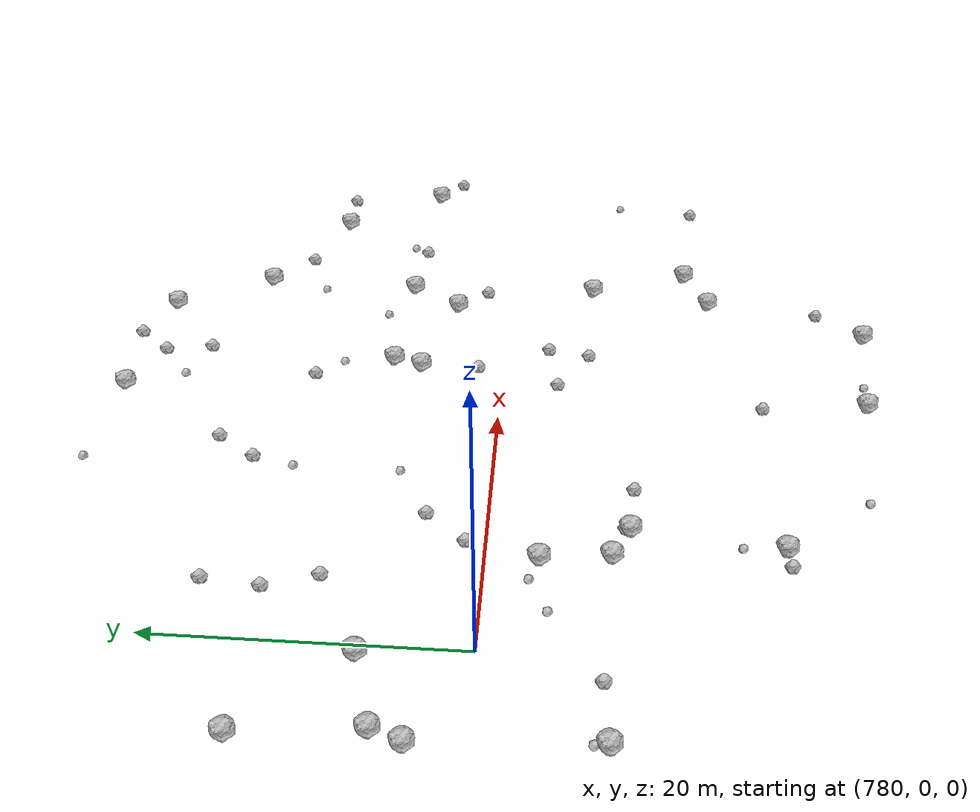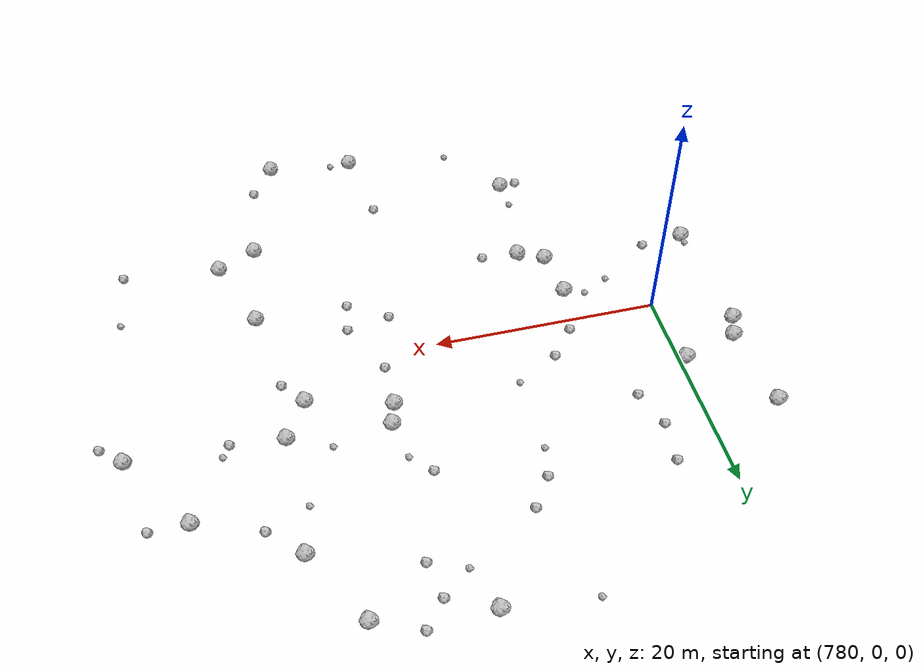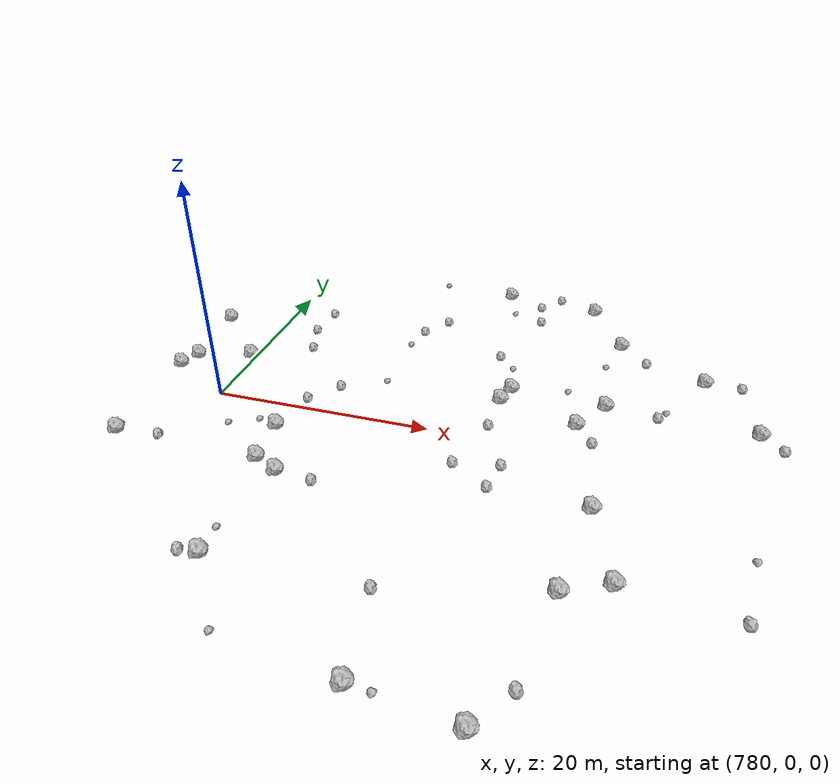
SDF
<sdf version="1.6">
 <world name="default">
  <include><uri>model://sun</uri></include>
  <model name="rock1_20_4">
   <include><uri>model://rock1</uri><pose>811.3789797285538 25.53555437764058 0.5 0 0 0</pose></include>
  </model>
  <model name="rock1_20_5">
   <include><uri>model://rock1</uri><pose>773.7374233360775 3.4619136225920926 0.5 0 0 0</pose></include>
  </model>
  <model name="rock1_20_6">
   <include><uri>model://rock1</uri><pose>817.3586921586631 -13.570278626457682 0.5 0 0 0</pose></include>
  </model>
  <model name="rock1_20_7">
   <include><uri>model://rock1</uri><pose>805.1569839065572 5.942245434161123 0.5 0 0 0</pose></include>
  </model>
  <model name="rock1_20_8">
   <include><uri>model://rock1</uri><pose>827.655069247413 6.720908277483446 0.5 0 0 0</pose></include>
  </model>
  <model name="rock1_20_9">
   <include><uri>model://rock1</uri><pose>805.7549116550215 7.984831683208711 0.5 0 0 0</pose></include>
  </model>
  <model name="rock1_20_10">
   <include><uri>model://rock1</uri><pose>812.3754027974496 3.887229916017425 0.5 0 0 0</pose></include>
  </model>
  <model name="rock1_20_11">
   <include><uri>model://rock1</uri><pose>813.8643900924701 -15.249603832975067 0.5 0 0 0</pose></include>
  </model>
  <model name="rock1_20_12">
   <include><uri>model://rock1</uri><pose>810.5370631689937 -26.580604804713886 0.5 0 0 0</pose></include>
  </model>
  <model name="rock1_20_13">
   <include><uri>model://rock1</uri><pose>787.755196873521 -7.854509484363973 0.5 0 0 0</pose></include>
  </model>
  <model name="rock1_20_14">
   <include><uri>model://rock1</uri><pose>802.7720359446454 -25.741325508989384 0.5 0 0 0</pose></include>
  </model>
  <model name="rock1_20_15">
   <include><uri>model://rock1</uri><pose>774.4881421251896 5.432009892951541 0.5 0 0 0</pose></include>
  </model>
  <model name="rock1_20_16">
   <include><uri>model://rock1</uri><pose>774.3232913651559 -7.689798417439317 0.5 0 0 0</pose></include>
  </model>
  <model name="rock1_20_17">
   <include><uri>model://rock1</uri><pose>787.2919973551503 -3.348871417814859 0.5 0 0 0</pose></include>
  </model>
  <model name="rock1_20_18">
   <include><uri>model://rock1</uri><pose>814.5030731974674 7.45946508614152 0.5 0 0 0</pose></include>
  </model>
  <model name="rock1_20_19">
   <include><uri>model://rock1</uri><pose>814.9793216968404 -6.450970049755458 0.5 0 0 0</pose></include>
  </model>
  <model name="rock1_20_20">
   <include><uri>model://rock1</uri><pose>801.8282156994051 26.837662000781826 0.5 0 0 0</pose></include>
  </model>
  <model name="rock1_20_21">
   <include><uri>model://rock1</uri><pose>814.8806979558383 18.76561991671386 0.5 0 0 0</pose></include>
  </model>
  <model name="rock1_20_22">
   <include><uri>model://rock1</uri><pose>823.0578754516304 13.906395261278611 0.5 0 0 0</pose></include>
  </model>
  <model name="rock1_20_23">
   <include><uri>model://rock1</uri><pose>779.4782176596158 6.907759437952073 0.5 0 0 0</pose></include>
  </model>
  <model name="rock1_20_24">
   <include><uri>model://rock1</uri><pose>790.0383266344603 -9.01923048715572 0.5 0 0 0</pose></include>
  </model>
  <model name="rock1_20_25">
   <include><uri>model://rock1</uri><pose>788.9750304687377 -18.728350222148933 0.5 0 0 0</pose></include>
  </model>
  <model name="rock1_20_26">
   <include><uri>model://rock1</uri><pose>773.761415217767 13.217649111139558 0.5 0 0 0</pose></include>
  </model>
  <model name="rock2_20_0">
   <include><uri>model://rock2</uri><pose>826.3567736470912 13.90090708737533 0.3 0 0 0</pose></include>
  </model>
  <model name="rock2_20_1">
   <include><uri>model://rock2</uri><pose>778.2368132779828 -7.365971204764964 0.3 0 0 0</pose></include>
  </model>
  <model name="rock2_20_2">
   <include><uri>model://rock2</uri><pose>812.6834017805014 -23.364090632307896 0.3 0 0 0</pose></include>
  </model>
  <model name="rock2_20_3">
   <include><uri>model://rock2</uri><pose>784.9329758294986 9.883527950417488 0.3 0 0 0</pose></include>
  </model>
  <model name="rock2_20_4">
   <include><uri>model://rock2</uri><pose>805.6148382522673 24.931869367917656 0.3 0 0 0</pose></include>
  </model>
  <model name="rock2_20_5">
   <include><uri>model://rock2</uri><pose>817.5078913170067 15.991067261027474 0.3 0 0 0</pose></include>
  </model>
  <model name="rock2_20_6">
   <include><uri>model://rock2</uri><pose>805.0223345337498 1.789899707788841 0.3 0 0 0</pose></include>
  </model>
  <model name="rock2_20_7">
   <include><uri>model://rock2</uri><pose>813.9799564470657 1.6888428091979257 0.3 0 0 0</pose></include>
  </model>
  <model name="rock2_20_8">
   <include><uri>model://rock2</uri><pose>819.1055632657981 6.955447183984809 0.3 0 0 0</pose></include>
  </model>
  <model name="rock2_20_9">
   <include><uri>model://rock2</uri><pose>794.8398820803936 16.16752460914269 0.3 0 0 0</pose></include>
  </model>
  <model name="rock2_20_10">
   <include><uri>model://rock2</uri><pose>783.8441251380256 13.340793900279749 0.3 0 0 0</pose></include>
  </model>
  <model name="rock2_20_11">
   <include><uri>model://rock2</uri><pose>829.4538919889396 4.993842212158718 0.3 0 0 0</pose></include>
  </model>
  <model name="rock2_20_12">
   <include><uri>model://rock2</uri><pose>825.9935205252284 -14.507995228152383 0.3 0 0 0</pose></include>
  </model>
  <model name="rock2_20_13">
   <include><uri>model://rock2</uri><pose>793.3269369698313 -9.296139770055344 0.3 0 0 0</pose></include>
  </model>
  <model name="rock2_20_14">
   <include><uri>model://rock2</uri><pose>796.6637380320633 18.851618485870816 0.3 0 0 0</pose></include>
  </model>
  <model name="rock2_20_15">
   <include><uri>model://rock2</uri><pose>790.3891018231647 3.994649977223432 0.3 0 0 0</pose></include>
  </model>
  <model name="rock2_20_16">
   <include><uri>model://rock2</uri><pose>787.3874076266136 -18.879937880911974 0.3 0 0 0</pose></include>
  </model>
  <model name="rock2_20_17">
   <include><uri>model://rock2</uri><pose>788.2109254855252 1.3087219543249056 0.3 0 0 0</pose></include>
  </model>
  <model name="rock2_20_18">
   <include><uri>model://rock2</uri><pose>803.5405223077677 13.451560521288783 0.3 0 0 0</pose></include>
  </model>
  <model name="rock2_20_19">
   <include><uri>model://rock2</uri><pose>807.2872766640618 -3.2837847753466853 0.3 0 0 0</pose></include>
  </model>
  <model name="rock2_20_20">
   <include><uri>model://rock2</uri><pose>806.7824077038154 -6.2034206394138955 0.3 0 0 0</pose></include>
  </model>
  <model name="rock2_20_21">
   <include><uri>model://rock2</uri><pose>807.4807867625568 27.239810081933683 0.3 0 0 0</pose></include>
  </model>
  <model name="rock2_20_22">
   <include><uri>model://rock2</uri><pose>803.4070533881879 -4.010313367896078 0.3 0 0 0</pose></include>
  </model>
  <model name="rock2_20_23">
   <include><uri>model://rock2</uri><pose>801.7644167769125 -18.37917773493888 0.3 0 0 0</pose></include>
  </model>
  <model name="rock2_20_24">
   <include><uri>model://rock2</uri><pose>806.1453102387258 21.63264538618443 0.3 0 0 0</pose></include>
  </model>
  <model name="rock2_20_25">
   <include><uri>model://rock2</uri><pose>784.229195506666 17.141465982070088 0.3 0 0 0</pose></include>
  </model>
  <model name="rock2_20_26">
   <include><uri>model://rock2</uri><pose>789.9022464499885 -8.715868047001319 0.3 0 0 0</pose></include>
  </model>
  <model name="rock3_20_0">
   <include><uri>model://rock3</uri><pose>794.1581221974583 6.105664891512291 0.2 0 0 0</pose></include>
  </model>
  <model name="rock3_20_1">
   <include><uri>model://rock3</uri><pose>813.7572529023851 14.355583706045564 0.2 0 0 0</pose></include>
  </model>
  <model name="rock3_20_2">
   <include><uri>model://rock3</uri><pose>804.6079098608457 -25.848468321040286 0.2 0 0 0</pose></include>
  </model>
  <model name="rock3_20_3">
   <include><uri>model://rock3</uri><pose>788.7637080211526 -16.042717322223204 0.2 0 0 0</pose></include>
  </model>
  <model name="rock3_20_4">
   <include><uri>model://rock3</uri><pose>819.759272881708 7.994386071856482 0.2 0 0 0</pose></include>
  </model>
  <model name="rock3_20_5">
   <include><uri>model://rock3</uri><pose>774.1651457237672 -6.888258170175131 0.2 0 0 0</pose></include>
  </model>
  <model name="rock3_20_6">
   <include><uri>model://rock3</uri><pose>810.8705107106555 9.046598373858416 0.2 0 0 0</pose></include>
  </model>
  <model name="rock3_20_7">
   <include><uri>model://rock3</uri><pose>785.4282010641388 -2.820355023541886 0.2 0 0 0</pose></include>
  </model>
  <model name="rock3_20_8">
   <include><uri>model://rock3</uri><pose>783.0275684037282 -4.052883369366256 0.2 0 0 0</pose></include>
  </model>
  <model name="rock3_20_9">
   <include><uri>model://rock3</uri><pose>826.6787657520249 -8.694816237772148 0.2 0 0 0</pose></include>
  </model>
  <model name="rock3_20_10">
   <include><uri>model://rock3</uri><pose>793.149776172045 -24.534042635372295 0.2 0 0 0</pose></include>
  </model>
  <model name="rock3_20_11">
   <include><uri>model://rock3</uri><pose>794.1925266298522 13.310870666255745 0.2 0 0 0</pose></include>
  </model>
  <model name="rock3_20_12">
   <include><uri>model://rock3</uri><pose>803.0700805186241 22.83029577504604 0.2 0 0 0</pose></include>
  </model>
  <model name="rock3_20_13">
   <include><uri>model://rock3</uri><pose>794.1757322738148 27.557491280192743 0.2 0 0 0</pose></include>
  </model>
  <model name="rock3_20_14">
   <include><uri>model://rock3</uri><pose>805.1362215909733 11.556606906846184 0.2 0 0 0</pose></include>
  </model>
 </world>
</sdf>
